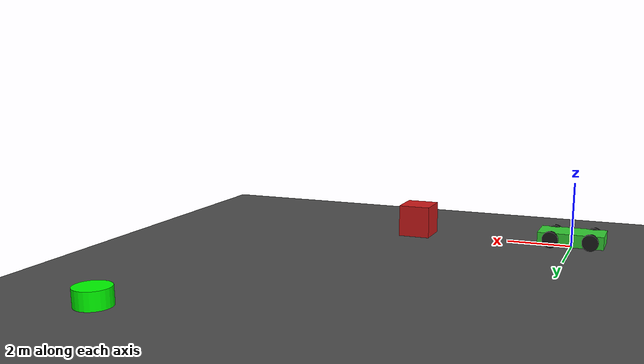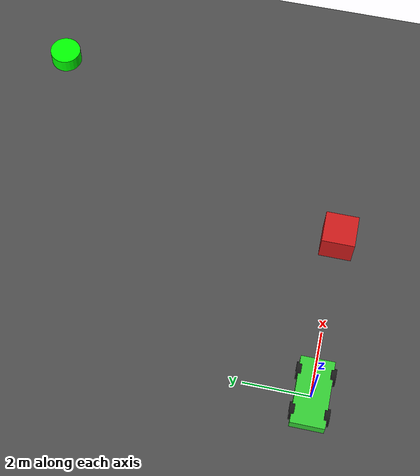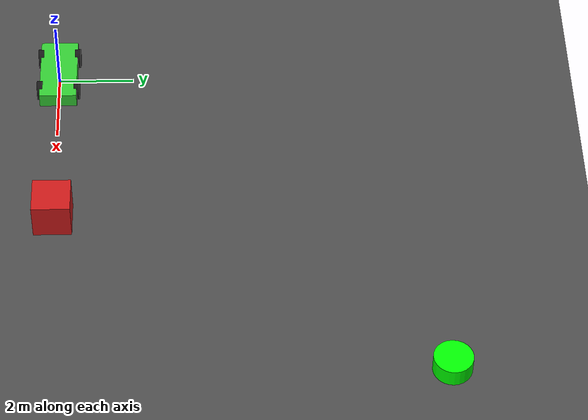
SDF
<?xml version="1.0"?>
<sdf version="1.9">
  <world name="ackermann_rl_world">

    <physics name="1ms" type="ignored">
      <max_step_size>0.001</max_step_size>
      <real_time_factor>1.0</real_time_factor>
    </physics>

    <light type="directional" name="sun">
      <cast_shadows>true</cast_shadows>
      <pose>0 0 10 0 0 0</pose>
      <diffuse>0.8 0.8 0.8 1</diffuse>
      <specular>0.2 0.2 0.2 1</specular>
      <direction>-0.5 0.1 -0.9</direction>
    </light>

    <model name="ground_plane">
      <static>true</static>
      <link name="link">
        <collision name="collision">
          <geometry>
            <plane>
              <normal>0 0 1</normal>
              <size>30 30</size>
            </plane>
          </geometry>
        </collision>
        <visual name="visual">
          <geometry>
            <plane>
              <normal>0 0 1</normal>
              <size>30 30</size>
            </plane>
          </geometry>
          <material>
            <ambient>0.3 0.3 0.3 1</ambient>
            <diffuse>0.3 0.3 0.3 1</diffuse>
          </material>
        </visual>
      </link>
    </model>

    <!-- Test obstacle -->
    <model name="obstacle_1">
      <static>true</static>
      <pose>5 0 0.5 0 0 0</pose>
      <link name="link">
        <collision name="collision">
          <geometry>
            <box>
              <size>1 1 1</size>
            </box>
          </geometry>
        </collision>
        <visual name="visual">
          <geometry>
            <box>
              <size>1 1 1</size>
            </box>
          </geometry>
          <material>
            <ambient>0.8 0.1 0.1 1</ambient>
            <diffuse>0.8 0.1 0.1 1</diffuse>
          </material>
        </visual>
      </link>
    </model>

    <!-- Goal marker -->
    <model name="goal">
      <static>true</static>
      <pose>10 10 0.25 0 0 0</pose>
      <link name="link">
        <visual name="visual">
          <geometry>
            <cylinder>
              <radius>0.5</radius>
              <length>0.5</length>
            </cylinder>
          </geometry>
          <material>
            <ambient>0.0 1.0 0.0 1</ambient>
            <diffuse>0.0 1.0 0.0 1</diffuse>
            <emissive>0.0 0.5 0.0 1</emissive>
          </material>
        </visual>
      </link>
    </model>

    <!-- Include Ackermann RL Car -->
    <include>
      <uri>file://ackermann_rl_car.sdf</uri>
      <name>robot</name>
      <pose>0 0 0 0 0 0</pose>
    </include>

    <!-- Plugins -->
    <plugin filename="gz-sim-physics-system" name="gz::sim::systems::Physics"></plugin>
    <plugin filename="gz-sim-user-commands-system" name="gz::sim::systems::UserCommands"></plugin>
    <plugin filename="gz-sim-scene-broadcaster-system" name="gz::sim::systems::SceneBroadcaster"></plugin>
    <plugin filename="gz-sim-sensors-system" name="gz::sim::systems::Sensors">
      <render_engine>ogre2</render_engine>
    </plugin>

  </world>
</sdf>

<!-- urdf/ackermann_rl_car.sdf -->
<sdf version="1.9">
  <model name="ackermann_rl_car">

    <!-- Chassis -->
    <link name="chassis">
      <pose>0 0 0.3 0 0 0</pose>

      <inertial>
        <mass>50.0</mass>
        <inertia>
          <ixx>5.0</ixx>
          <iyy>5.0</iyy>
          <izz>5.0</izz>
        </inertia>
      </inertial>

      <collision name="collision">
        <geometry>
          <box>
            <size>2.0 1.0 0.4</size>
          </box>
        </geometry>
      </collision>

      <visual name="visual">
        <geometry>
          <box>
            <size>2.0 1.0 0.4</size>
          </box>
        </geometry>
        <material>
          <ambient>0.2 0.8 0.2 1.0</ambient>
          <diffuse>0.2 0.8 0.2 1.0</diffuse>
        </material>
      </visual>
    </link>

    <!-- LiDAR Sensor -->
    <link name="lidar_link">
      <pose relative_to="chassis">0 0 0.4 0 0 0</pose>
      <inertial>
        <mass>0.1</mass>
        <inertia>
          <ixx>0.001</ixx>
          <iyy>0.001</iyy>
          <izz>0.001</izz>
        </inertia>
      </inertial>
      <visual name="visual">
        <geometry>
          <cylinder>
            <radius>0.05</radius>
            <length>0.07</length>
          </cylinder>
        </geometry>
        <material>
          <ambient>0.0 0.0 0.0 1.0</ambient>
          <diffuse>0.0 0.0 0.0 1.0</diffuse>
        </material>
      </visual>
      <sensor name="lidar" type="gpu_lidar">
        <topic>/scan</topic>
        <update_rate>10</update_rate>
        <lidar>
          <scan>
            <horizontal>
              <samples>360</samples>
              <resolution>1</resolution>
              <min_angle>-3.14159</min_angle>
              <max_angle>3.14159</max_angle>
            </horizontal>
          </scan>
          <range>
            <min>0.1</min>
            <max>10.0</max>
            <resolution>0.01</resolution>
          </range>
          <noise>
            <type>gaussian</type>
            <mean>0.0</mean>
            <stddev>0.01</stddev>
          </noise>
        </lidar>
        <always_on>1</always_on>
        <visualize>true</visualize>
      </sensor>
    </link>
    <joint name="lidar_joint" type="fixed">
      <parent>chassis</parent>
      <child>lidar_link</child>
    </joint>

    <!-- Front Left Steering Hub -->
    <link name="front_left_steering_hub">
      <pose relative_to="chassis">0.6 0.5 0 0 0 0</pose>
      <inertial>
        <mass>1.0</mass>
        <inertia>
          <ixx>0.01</ixx>
          <iyy>0.01</iyy>
          <izz>0.01</izz>
        </inertia>
      </inertial>
    </link>

    <joint name="front_left_steering_joint" type="revolute">
      <parent>chassis</parent>
      <child>front_left_steering_hub</child>
      <axis>
        <xyz>0 0 1</xyz>
        <limit>
          <lower>-0.7</lower>
          <upper>0.7</upper>
        </limit>
      </axis>
    </joint>

    <!-- Front Right Steering Hub -->
    <link name="front_right_steering_hub">
      <pose relative_to="chassis">0.6 -0.5 0 0 0 0</pose>
      <inertial>
        <mass>1.0</mass>
        <inertia>
          <ixx>0.01</ixx>
          <iyy>0.01</iyy>
          <izz>0.01</izz>
        </inertia>
      </inertial>
    </link>

    <joint name="front_right_steering_joint" type="revolute">
      <parent>chassis</parent>
      <child>front_right_steering_hub</child>
      <axis>
        <xyz>0 0 1</xyz>
        <limit>
          <lower>-0.7</lower>
          <upper>0.7</upper>
        </limit>
      </axis>
    </joint>

    <!-- Front Left Wheel -->
    <link name="front_left_wheel">
      <pose relative_to="front_left_steering_hub">0 0 0 -1.5708 0 0</pose>

      <inertial>
        <mass>2.0</mass>
        <inertia>
          <ixx>0.05</ixx>
          <iyy>0.05</iyy>
          <izz>0.05</izz>
        </inertia>
      </inertial>

      <collision name="collision">
        <geometry>
          <cylinder>
            <radius>0.25</radius>
            <length>0.15</length>
          </cylinder>
        </geometry>
        <surface>
          <friction>
            <ode>
              <mu>1.0</mu>
              <mu2>1.0</mu2>
            </ode>
          </friction>
        </surface>
      </collision>

      <visual name="visual">
        <geometry>
          <cylinder>
            <radius>0.25</radius>
            <length>0.15</length>
          </cylinder>
        </geometry>
        <material>
          <ambient>0.1 0.1 0.1 1.0</ambient>
          <diffuse>0.1 0.1 0.1 1.0</diffuse>
        </material>
      </visual>
    </link>

    <joint name="front_left_wheel_joint" type="revolute">
      <parent>front_left_steering_hub</parent>
      <child>front_left_wheel</child>
      <axis>
        <xyz>0 0 1</xyz>
      </axis>
    </joint>

    <!-- Front Right Wheel -->
    <link name="front_right_wheel">
      <pose relative_to="front_right_steering_hub">0 0 0 -1.5708 0 0</pose>

      <inertial>
        <mass>2.0</mass>
        <inertia>
          <ixx>0.05</ixx>
          <iyy>0.05</iyy>
          <izz>0.05</izz>
        </inertia>
      </inertial>

      <collision name="collision">
        <geometry>
          <cylinder>
            <radius>0.25</radius>
            <length>0.15</length>
          </cylinder>
        </geometry>
        <surface>
          <friction>
            <ode>
              <mu>1.0</mu>
              <mu2>1.0</mu2>
            </ode>
          </friction>
        </surface>
      </collision>

      <visual name="visual">
        <geometry>
          <cylinder>
            <radius>0.25</radius>
            <length>0.15</length>
          </cylinder>
        </geometry>
        <material>
          <ambient>0.1 0.1 0.1 1.0</ambient>
          <diffuse>0.1 0.1 0.1 1.0</diffuse>
        </material>
      </visual>
    </link>

    <joint name="front_right_wheel_joint" type="revolute">
      <parent>front_right_steering_hub</parent>
      <child>front_right_wheel</child>
      <axis>
        <xyz>0 0 1</xyz>
      </axis>
    </joint>

    <!-- Rear Left Wheel -->
    <link name="rear_left_wheel">
      <pose relative_to="chassis">-0.6 0.5 0 -1.5708 0 0</pose>

      <inertial>
        <mass>2.0</mass>
        <inertia>
          <ixx>0.05</ixx>
          <iyy>0.05</iyy>
          <izz>0.05</izz>
        </inertia>
      </inertial>

      <collision name="collision">
        <geometry>
          <cylinder>
            <radius>0.25</radius>
            <length>0.15</length>
          </cylinder>
        </geometry>
        <surface>
          <friction>
            <ode>
              <mu>1.0</mu>
              <mu2>1.0</mu2>
            </ode>
          </friction>
        </surface>
      </collision>

      <visual name="visual">
        <geometry>
          <cylinder>
            <radius>0.25</radius>
            <length>0.15</length>
          </cylinder>
        </geometry>
        <material>
          <ambient>0.1 0.1 0.1 1.0</ambient>
          <diffuse>0.1 0.1 0.1 1.0</diffuse>
        </material>
      </visual>
    </link>

    <joint name="rear_left_wheel_joint" type="revolute">
      <parent>chassis</parent>
      <child>rear_left_wheel</child>
      <axis>
        <xyz>0 0 1</xyz>
      </axis>
    </joint>

    <!-- Rear Right Wheel -->
    <link name="rear_right_wheel">
      <pose relative_to="chassis">-0.6 -0.5 0 -1.5708 0 0</pose>

      <inertial>
        <mass>2.0</mass>
        <inertia>
          <ixx>0.05</ixx>
          <iyy>0.05</iyy>
          <izz>0.05</izz>
        </inertia>
      </inertial>

      <collision name="collision">
        <geometry>
          <cylinder>
            <radius>0.25</radius>
            <length>0.15</length>
          </cylinder>
        </geometry>
        <surface>
          <friction>
            <ode>
              <mu>1.0</mu>
              <mu2>1.0</mu2>
            </ode>
          </friction>
        </surface>
      </collision>

      <visual name="visual">
        <geometry>
          <cylinder>
            <radius>0.25</radius>
            <length>0.15</length>
          </cylinder>
        </geometry>
        <material>
          <ambient>0.1 0.1 0.1 1.0</ambient>
          <diffuse>0.1 0.1 0.1 1.0</diffuse>
        </material>
      </visual>
    </link>

    <joint name="rear_right_wheel_joint" type="revolute">
      <parent>chassis</parent>
      <child>rear_right_wheel</child>
      <axis>
        <xyz>0 0 1</xyz>
      </axis>
    </joint>

    <!-- Ackermann Steering Plugin -->
    <plugin
      filename="gz-sim-ackermann-steering-system"
      name="gz::sim::systems::AckermannSteering">
      <left_joint>rear_left_wheel_joint</left_joint>
      <right_joint>rear_right_wheel_joint</right_joint>
      <left_steering_joint>front_right_steering_joint</left_steering_joint>
      <right_steering_joint>front_left_steering_joint</right_steering_joint>
      <wheel_base>1.2</wheel_base>
      <wheel_separation>1.0</wheel_separation>
      <steering_limit>0.7</steering_limit>
      <wheel_radius>0.25</wheel_radius>
      <min_velocity>-3.0</min_velocity>
      <max_velocity>3.0</max_velocity>
      <min_acceleration>-2.0</min_acceleration>
      <max_acceleration>2.0</max_acceleration>
      <topic>/cmd_vel</topic>
      <odom_topic>/odom</odom_topic>
      <odom_publish_frequency>50</odom_publish_frequency>
    </plugin>

  </model>
</sdf>
